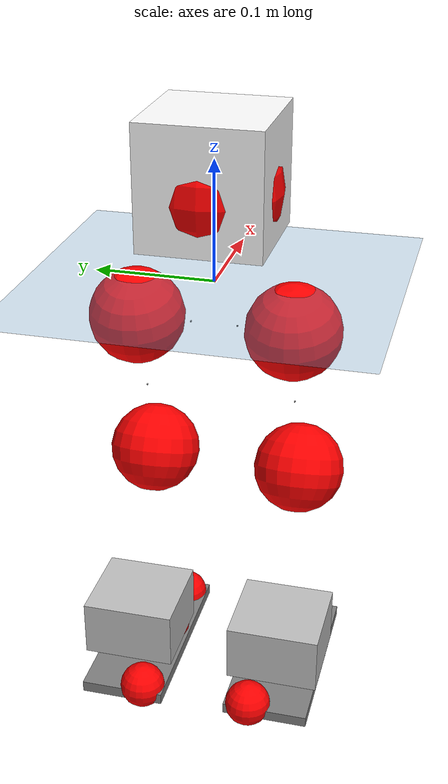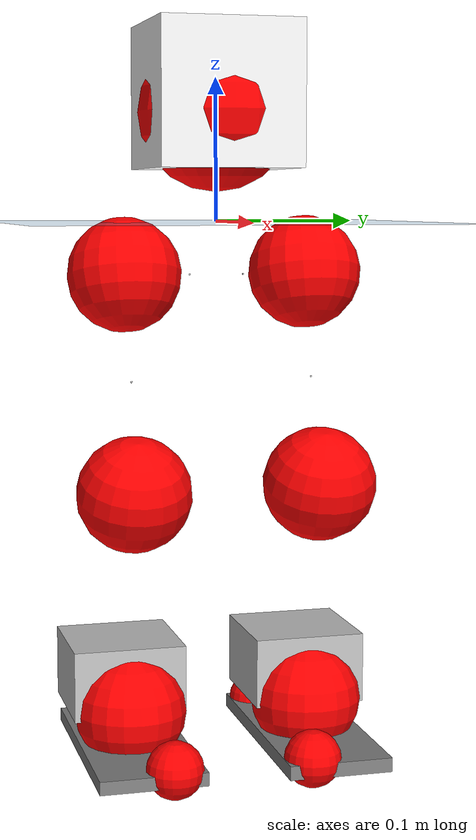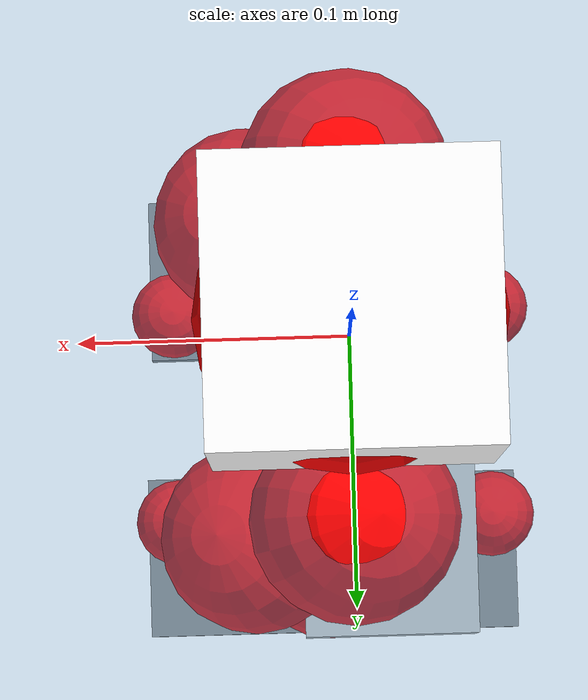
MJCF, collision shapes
<mujoco model="pi_12dof_release_v1">
  <compiler angle="radian" assetdir="assets" balanceinertia="true" inertiafromgeom="false"/>

  <option timestep="0.005" density="1.2" viscosity="2e-05"/>

  <size nkey="1"/>

  <visual>
    <quality shadowsize="8192"/>
    <map shadowclip="0.5"/>
  </visual>

  <default>
    <default class="/">
      <joint armature="0.01" damping="0.01" frictionloss="0.01"/>
      <geom contype="0" conaffinity="0" group="1" solref="-1000 -80"/>
      <site size="0.01 0.005 0.005" group="5"/>
      <general forcelimited="true" biastype="affine" gainprm="20" biasprm="0 -20 -0.5"/>
      <default class="foot">
        <geom size="0.0845 0.036 0.005" type="box" condim="6" group="4" priority="1" friction="0.9 0.2 0.2" solimp="0.015 1 0.005"/>
      </default>
      <default class="reward_collision_sphere">
        <geom group="5" rgba="1 0 0 1"/>
      </default>
    </default>
  </default>

  <asset>
    <texture type="skybox" colorspace="auto" name="//unnamed_texture_0" builtin="gradient" rgb1="0.95 0.95 0.95" rgb2="0.95 0.95 0.95" width="100" height="600"/>
    <texture type="2d" colorspace="auto" name="texplane" builtin="checker" rgb1="0.345 0.575 0.748" rgb2="0.345 0.575 0.748" markrgb="1 1 1" width="512" height="512"/>
    <material name="MatPlane" class="/" texture="texplane" texuniform="true" texrepeat="2 2" specular="0.9"/>
    <mesh name="baselink_1" class="/" file="baselink_1.STL"/>
    <mesh name="r_hip_pitch_link" class="/" file="r_hip_pitch_link.STL"/>
    <mesh name="r_hip_roll_link" class="/" file="r_hip_roll_link.STL"/>
    <mesh name="r_thigh_link" class="/" file="r_thigh_link.STL"/>
    <mesh name="r_calf_link" class="/" file="r_calf_link.STL"/>
    <mesh name="r_ankle_pitch_link" class="/" file="r_ankle_pitch_link.STL"/>
    <mesh name="r_ankle_roll_link" class="/" file="r_ankle_roll_link.STL"/>
    <mesh name="l_hip_pitch_link" class="/" file="l_hip_pitch_link.STL"/>
    <mesh name="l_hip_roll_link" class="/" file="l_hip_roll_link.STL"/>
    <mesh name="l_thigh_link" class="/" file="l_thigh_link.STL"/>
    <mesh name="l_calf_link" class="/" file="l_calf_link.STL"/>
    <mesh name="l_ankle_pitch_link" class="/" file="l_ankle_pitch_link.STL"/>
    <mesh name="l_ankle_roll_link" class="/" file="l_ankle_roll_link.STL"/>
  </asset>

  <worldbody>
    <geom name="floor" class="/" size="100 100 0.125" type="plane" group="0" material="MatPlane"/>
    <light name="toplight_shadow" class="/" pos="0 0 5" dir="0.0990148 0.0990148 -0.990148" type="directional" ambient="0.04 0.04 0.04" diffuse="0.55 0.55 0.55" specular="0.12 0.12 0.12"/>
    <light name="toplight_fill" class="/" pos="0 0 5" dir="0.0990148 0.0990148 -0.990148" type="directional" castshadow="false" ambient="0.04 0.04 0.04" diffuse="0.3 0.3 0.3" specular="0.08 0.08 0.08"/>
    <body name="trunk" pos="0.000402434 0.000169645 -0.00117058" quat="1 -0.000191581 -0.00032927 8.48968e-05">
      <inertial pos="0.00330185 -0.000850405 0.0442262" quat="0.694504 0.00846634 0.0120984 0.719338" mass="2.26241" diaginertia="0.0153267 0.00355388 0.00692199"/>
      <joint name="//unnamed_joint_0" type="free"/>
      <geom name="//unnamed_geom_1" class="/" type="mesh" density="0" rgba="1 1 1 1" mesh="baselink_1"/>
      <geom name="//unnamed_geom_2" class="/" size="0.0503917 0.0503917 0.0503917" pos="0 0 0.0883344" type="box" rgba="1 1 1 1"/>
      <geom name="//unnamed_geom_3" class="reward_collision_sphere" size="0.0554309" pos="0 0 0.0772926"/>
      <site name="imu" class="/" pos="0.00237165 -0.00450541 0.0010136" size="0.0100783"/>
      <camera name="track" class="/" pos="0 -1.65647 0" quat="0.707107 0.707107 0 0" mode="trackcom"/>
      <camera name="ego_camera" class="/" pos="0.0818316 0 0.198752" quat="-0.5 -0.5 0.5 0.5"/>
      <body name="r_hip_pitch_link" pos="-5.30429e-05 -0.0193282 -0.0360686" quat="0.992197 7.07891e-06 -0.124679 5.69784e-06">
        <inertial pos="0.000897227 -0.0459751 -0.000604608" quat="-0.0237637 0.7047 -0.026523 0.708611" mass="0.382623" diaginertia="0.000168875 3.8694e-05 0.000137882"/>
        <joint name="r_hip_pitch_joint" class="/" pos="0 0 0" axis="0.000140882 -0.999999 0.00132946" range="-1.74218 1.24908" armature="0.0101945" damping="0.01361" frictionloss="0.0103385"/>
        <geom name="//unnamed_geom_4" class="/" type="mesh" density="0" rgba="0.75294 0.75294 0.75294 1" mesh="r_hip_pitch_link"/>
        <geom name="//unnamed_geom_5" class="/" size="0.000503917 0.000503917 0.000503917" type="box" rgba="0.75294 0.75294 0.75294 1"/>
        <body name="r_hip_roll_link" pos="-0.000363149 -0.0468725 0.000325577" quat="1 -5.11565e-05 -9.56643e-05 0.000105433">
          <inertial pos="-0.000958117 -9.30026e-05 -0.067855" quat="0.70681 -0.0788725 -0.0818989 0.698205" mass="0.397521" diaginertia="0.000517413 0.000108021 0.000210103"/>
          <joint name="r_hip_roll_joint" class="/" pos="0 0 0" axis="-0.999997 0.000182205 -0.00250795" range="-0.122797 0.500312" armature="0.00935856" damping="0.0094273" frictionloss="0.00964495"/>
          <geom name="//unnamed_geom_6" class="/" type="mesh" density="0" rgba="0.75294 0.75294 0.75294 1" mesh="r_hip_roll_link"/>
          <geom name="//unnamed_geom_7" class="/" size="0.000503917 0.000503917 0.000503917" type="box" rgba="0.75294 0.75294 0.75294 1"/>
          <geom name="//unnamed_geom_8" class="reward_collision_sphere" size="0.0403134"/>
          <body name="r_thigh_link" pos="0.000626095 0.000759991 -0.0760224" quat="1 -0.000174201 -5.33e-05 -6.4748e-05">
            <inertial pos="-0.00103335 -0.000108862 -0.0522211" quat="0.737888 0.674922 -0.000508273 0.00113973" mass="0.116128" diaginertia="0.000192335 3.7114e-05 9.52021e-05"/>
            <joint name="r_thigh_joint" class="/" pos="0 0 0" axis="-0.000119274 -0.000130551 -1" range="-0.282967 0.594963" armature="0.00945207" damping="0.00151833" frictionloss="0.00981863"/>
            <geom name="//unnamed_geom_9" class="/" type="mesh" density="0" rgba="0.75294 0.75294 0.75294 1" mesh="r_thigh_link"/>
            <geom name="//unnamed_geom_10" class="/" size="0.000503917 0.000503917 0.000503917" type="box" rgba="0.75294 0.75294 0.75294 1"/>
            <body name="r_calf_link" pos="-0.000131699 -0.00226223 -0.0780212" quat="0.947522 0.000568026 0.319691 5.3463e-05">
              <inertial pos="0.000584916 -0.000789776 -0.0768954" quat="0.999981 -0.0040649 -0.00459139 0.000731092" mass="0.848413" diaginertia="0.00549496 0.00136984 0.000289"/>
              <joint name="r_calf_joint" class="/" pos="0 0 0" axis="-0.00155037 -0.999998 0.0011911" range="-1.65409 0.629126" armature="0.0101203" damping="0.00704752" frictionloss="0.0101138"/>
              <geom name="//unnamed_geom_11" class="/" type="mesh" density="0" rgba="0.75294 0.75294 0.75294 1" mesh="r_calf_link"/>
              <geom name="//unnamed_geom_12" class="/" size="0.000503917 0.000503917 0.000503917" type="box" rgba="0.75294 0.75294 0.75294 1"/>
              <geom name="//unnamed_geom_13" class="reward_collision_sphere" size="0.0403134"/>
              <body name="r_ankle_pitch_link" pos="-0.000232773 0.000770276 -0.152888" quat="0.979997 -8.32128e-07 -0.199012 -4.61841e-05">
                <inertial pos="0.0061901 0.00317619 0.000191441" quat="0.00224557 0.707235 -0.0022722 0.706971" mass="0.179361" diaginertia="0.000473528 8.64263e-05 0.000194446"/>
                <joint name="r_ankle_pitch_joint" class="/" pos="0 0 0" axis="-2.78792e-05 -0.999984 0.00570967" range="-1.27915 0.499747" armature="0.0104011" damping="0.016638" frictionloss="0.0103368"/>
                <geom name="//unnamed_geom_14" class="/" type="mesh" density="0" rgba="0.75294 0.75294 0.75294 1" mesh="r_ankle_pitch_link"/>
                <geom name="//unnamed_geom_15" class="/" size="0.0393055 0.0403134 0.0251959" type="box" rgba="0.75294 0.75294 0.75294 1"/>
                <body name="r_ankle_roll_link" pos="0.0821577 0.00189661 6.55504e-05" quat="1 8.72986e-05 0.000132277 2.43921e-05">
                  <inertial pos="-0.0257453 -0.000482797 -0.0163413" quat="0.559329 0.429997 0.429156 0.563984" mass="0.52299" diaginertia="0.0017393 0.000400351 0.000465512"/>
                  <joint name="r_ankle_roll_joint" class="/" pos="0 0 0" axis="-1 -0.000495706 -3.55152e-05" range="-0.18022 0.133644" armature="0.00991415" damping="0.0130192" frictionloss="0.00965941"/>
                  <geom name="//unnamed_geom_16" class="/" type="mesh" density="0" rgba="0.75294 0.75294 0.75294 1" mesh="r_ankle_roll_link"/>
                  <geom name="//unnamed_geom_17" class="/" type="mesh" rgba="0.75294 0.75294 0.75294 1" mesh="r_ankle_roll_link"/>
                  <geom name="right_foot" class="foot" size="0.0832043 0.0375931 0.00471013" pos="-0.0556455 0 -0.0485839"/>
                  <geom name="//unnamed_geom_19" class="reward_collision_sphere" size="0.0403134" pos="-0.0545544 0 -0.0220836"/>
                  <geom name="//unnamed_geom_20" class="reward_collision_sphere" size="0.0201567" pos="0.0163663 0.0165647 -0.0441672"/>
                  <geom name="//unnamed_geom_21" class="reward_collision_sphere" size="0.0201567" pos="-0.130931 0.0165647 -0.0441672"/>
                  <site name="right_foot" class="foot" pos="-0.0556455 0 -0.0485839" size="0.0100783"/>
                </body>
              </body>
            </body>
          </body>
        </body>
      </body>
      <body name="l_hip_pitch_link" pos="-0.000107483 0.0197591 -0.0361157" quat="0.992204 -1.65197e-05 -0.124623 -2.1522e-05">
        <inertial pos="0.00179297 0.0437795 -0.00168587" quat="-0.0416339 0.706014 0.0309169 0.706297" mass="0.402071" diaginertia="0.000203033 4.10583e-05 0.000167729"/>
        <joint name="l_hip_pitch_joint" class="/" pos="0 0 0" axis="0.00248522 0.999997 0.00038115" range="-1.26872 1.77098" armature="0.0101132" damping="0.00337452" frictionloss="0.00960133"/>
        <geom name="//unnamed_geom_22" class="/" type="mesh" density="0" rgba="0.75294 0.75294 0.75294 1" mesh="l_hip_pitch_link"/>
        <geom name="//unnamed_geom_23" class="/" size="0.000503917 0.000503917 0.000503917" type="box" rgba="0.75294 0.75294 0.75294 1"/>
        <body name="l_hip_roll_link" pos="-0.000644458 0.0459335 0.00140437" quat="1 -3.95734e-05 -0.000257214 -7.72251e-05">
          <inertial pos="0.00017196 0.000273827 -0.0690563" quat="0.699173 -0.0754086 -0.078143 0.706657" mass="0.407113" diaginertia="0.000530662 0.000110994 0.000213425"/>
          <joint name="l_hip_roll_joint" class="/" pos="0 0 0" axis="-1 0.000650413 -0.000135725" stiffness="0.000195347" range="-0.501696 0.135068" armature="0.0102684" damping="0.00133935" frictionloss="0.010059"/>
          <geom name="//unnamed_geom_24" class="/" type="mesh" density="0" rgba="0.75294 0.75294 0.75294 1" mesh="l_hip_roll_link"/>
          <geom name="//unnamed_geom_25" class="/" size="0.000503917 0.000503917 0.000503917" type="box" rgba="0.75294 0.75294 0.75294 1"/>
          <geom name="//unnamed_geom_26" class="reward_collision_sphere" size="0.0403134"/>
          <body name="l_thigh_link" pos="0.000394585 -0.000635919 -0.0763457" quat="1 6.75458e-05 3.9648e-05 -0.000115941">
            <inertial pos="-0.000594398 -0.00226461 -0.0540726" quat="0.67619 0.736722 -0.00210369 0.00180445" mass="0.115711" diaginertia="0.000194241 3.75749e-05 9.47213e-05"/>
            <joint name="l_thigh_joint" class="/" pos="0 0 0" axis="0.000154598 -3.02616e-05 -1" range="-0.593901 0.285626" armature="0.00990591" damping="0.0106762" frictionloss="0.0107385"/>
            <geom name="//unnamed_geom_27" class="/" type="mesh" density="0" rgba="0.75294 0.75294 0.75294 1" mesh="l_thigh_link"/>
            <geom name="//unnamed_geom_28" class="/" size="0.000503917 0.000503917 0.000503917" type="box" rgba="0.75294 0.75294 0.75294 1"/>
            <body name="l_calf_link" pos="0.0011713 0.000579486 -0.0767757" quat="0.947648 -4.50311e-07 0.319318 2.00013e-06">
              <inertial pos="0.000754268 0.00348276 -0.0767789" quat="0.999976 0.0058601 -0.0014502 0.003286" mass="0.82847" diaginertia="0.00558674 0.00138134 0.000287254"/>
              <joint name="l_calf_joint" class="/" pos="0 0 0" axis="0.00501706 0.999987 0.00114178" range="-0.656543 1.66724" armature="0.0101624" damping="0.0112721" frictionloss="0.00969472"/>
              <geom name="//unnamed_geom_29" class="/" type="mesh" density="0" rgba="0.75294 0.75294 0.75294 1" mesh="l_calf_link"/>
              <geom name="//unnamed_geom_30" class="/" size="0.000503917 0.000503917 0.000503917" type="box" rgba="0.75294 0.75294 0.75294 1"/>
              <geom name="//unnamed_geom_31" class="reward_collision_sphere" size="0.0403134"/>
              <body name="l_ankle_pitch_link" pos="0.00105229 0.00044316 -0.153802" quat="0.980128 4.77753e-05 -0.198367 4.30541e-05">
                <inertial pos="0.0043875 0.000171077 -0.000961912" quat="-0.0022769 0.704823 0.00377492 0.70937" mass="0.177508" diaginertia="0.000478718 8.64962e-05 0.000197882"/>
                <joint name="l_ankle_pitch_joint" class="/" pos="0 0 0" axis="-0.00205698 0.999998 3.22222e-05" range="-0.491576 1.30128" armature="0.0105199" damping="0" frictionloss="0.0101541"/>
                <geom name="//unnamed_geom_32" class="/" type="mesh" density="0" rgba="0.75294 0.75294 0.75294 1" mesh="l_ankle_pitch_link"/>
                <geom name="//unnamed_geom_33" class="/" size="0.0393055 0.0403134 0.0251959" type="box" rgba="0.75294 0.75294 0.75294 1"/>
                <body name="l_ankle_roll_link" pos="0.0811559 0.000289339 -0.000672245" quat="1 -0.000519495 0.000404907 0.000332206">
                  <inertial pos="-0.0266265 -0.000473421 -0.0158253" quat="0.560197 0.432621 0.431496 0.559311" mass="0.522224" diaginertia="0.00171998 0.000392912 0.000455316"/>
                  <joint name="l_ankle_roll_joint" class="/" pos="0 0 0" axis="-1 -6.15747e-05 -0.000256006" range="-0.144841 0.122465" armature="0.00998433" damping="0.00931457" frictionloss="0.0105475"/>
                  <geom name="//unnamed_geom_34" class="/" type="mesh" density="0" rgba="0.75294 0.75294 0.75294 1" mesh="l_ankle_roll_link"/>
                  <geom name="//unnamed_geom_35" class="/" type="mesh" rgba="0.75294 0.75294 0.75294 1" mesh="l_ankle_roll_link"/>
                  <geom name="left_foot" class="foot" size="0.0864158 0.0369813 0.00503522" pos="-0.0556455 0 -0.0485839"/>
                  <geom name="//unnamed_geom_37" class="reward_collision_sphere" size="0.0403134" pos="-0.0545544 0 -0.0220836"/>
                  <geom name="//unnamed_geom_38" class="reward_collision_sphere" size="0.0201567" pos="0.0163663 -0.0165647 -0.0441672"/>
                  <geom name="//unnamed_geom_39" class="reward_collision_sphere" size="0.0201567" pos="-0.130931 -0.0165647 -0.0441672"/>
                  <site name="left_foot" class="foot" pos="-0.0556455 0 -0.0485839" size="0.0100783"/>
                </body>
              </body>
            </body>
          </body>
        </body>
      </body>
    </body>
  </worldbody>

  <contact>
    <pair class="/" geom1="floor" geom2="right_foot" name="//unnamed_contact_1"/>
    <pair class="/" geom1="floor" geom2="left_foot" name="//unnamed_contact_0"/>
  </contact>

  <actuator>
    <general name="r_hip_pitch_joint" class="/" joint="r_hip_pitch_joint" forcerange="-21.4459 21.4459" gainprm="19.4633" biasprm="0 -19.4633 -0.501146"/>
    <general name="r_hip_roll_joint" class="/" joint="r_hip_roll_joint" forcerange="-20.0828 20.0828" gainprm="19.4633" biasprm="0 -19.4633 -0.501146"/>
    <general name="r_thigh_joint" class="/" joint="r_thigh_joint" forcerange="-21.0608 21.0608" gainprm="19.4633" biasprm="0 -19.4633 -0.501146"/>
    <general name="r_calf_joint" class="/" joint="r_calf_joint" forcerange="-22.3491 22.3491" gainprm="19.4633" biasprm="0 -19.4633 -0.501146"/>
    <general name="r_ankle_pitch_joint" class="/" joint="r_ankle_pitch_joint" forcerange="-21.8221 21.8221" gainprm="19.4633" biasprm="0 -19.4633 -0.501146"/>
    <general name="r_ankle_roll_joint" class="/" joint="r_ankle_roll_joint" forcerange="-20.0682 20.0682" gainprm="19.4633" biasprm="0 -19.4633 -0.501146"/>
    <general name="l_hip_pitch_joint" class="/" joint="l_hip_pitch_joint" forcerange="-21.059 21.059" gainprm="19.4633" biasprm="0 -19.4633 -0.501146"/>
    <general name="l_hip_roll_joint" class="/" joint="l_hip_roll_joint" forcerange="-21.5714 21.5714" gainprm="19.4633" biasprm="0 -19.4633 -0.501146"/>
    <general name="l_thigh_joint" class="/" joint="l_thigh_joint" forcerange="-20.429 20.429" gainprm="19.4633" biasprm="0 -19.4633 -0.501146"/>
    <general name="l_calf_joint" class="/" joint="l_calf_joint" forcerange="-20.7531 20.7531" gainprm="19.4633" biasprm="0 -19.4633 -0.501146"/>
    <general name="l_ankle_pitch_joint" class="/" joint="l_ankle_pitch_joint" forcerange="-20.4062 20.4062" gainprm="19.4633" biasprm="0 -19.4633 -0.501146"/>
    <general name="l_ankle_roll_joint" class="/" joint="l_ankle_roll_joint" forcerange="-21.0048 21.0048" gainprm="19.4633" biasprm="0 -19.4633 -0.501146"/>
  </actuator>

  <sensor>
    <gyro site="imu" name="imu_angular_velocity"/>
    <velocimeter site="imu" name="imu_linear_velocity"/>
    <framelinvel objtype="site" objname="left_foot" name="left_foot_global_linear_velocity"/>
    <framelinvel objtype="site" objname="right_foot" name="right_foot_global_linear_velocity"/>
  </sensor>

  <keyframe>
    <key name="home" qpos="0 0 0.291 1 0 0 0 0.4 0 0 -0.8 0.4 0 -0.4 0 0 0.8 -0.4 0"/>
  </keyframe>
</mujoco>
